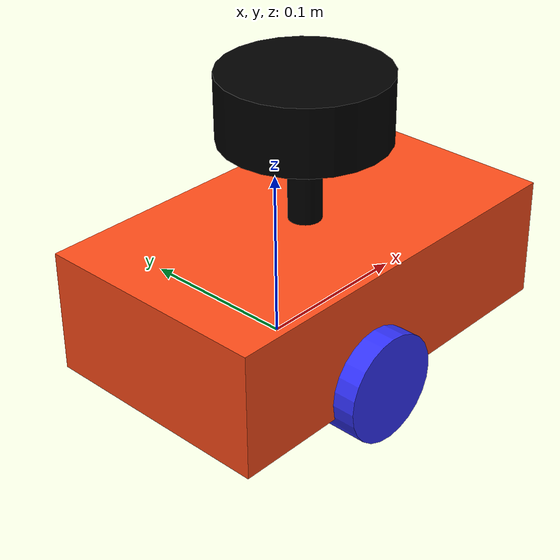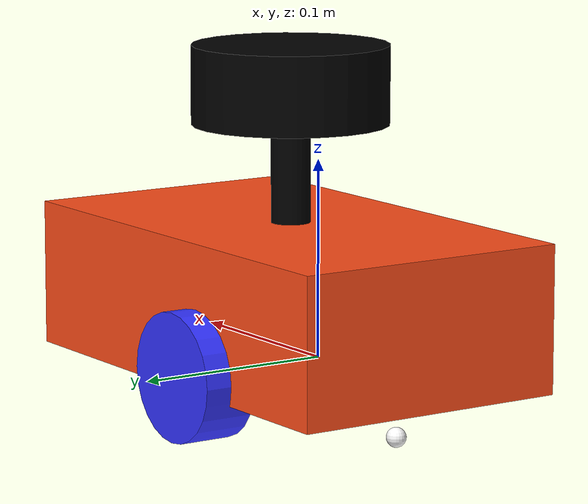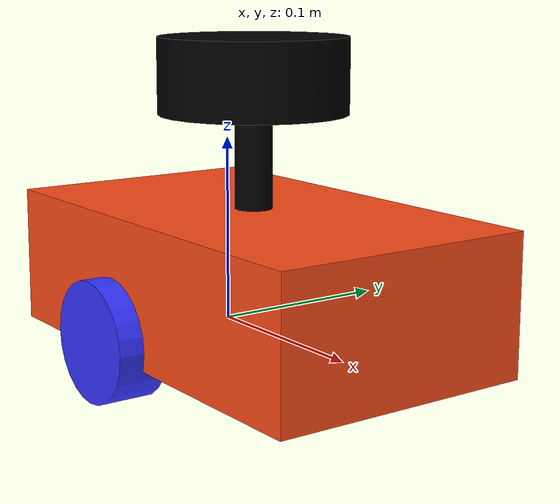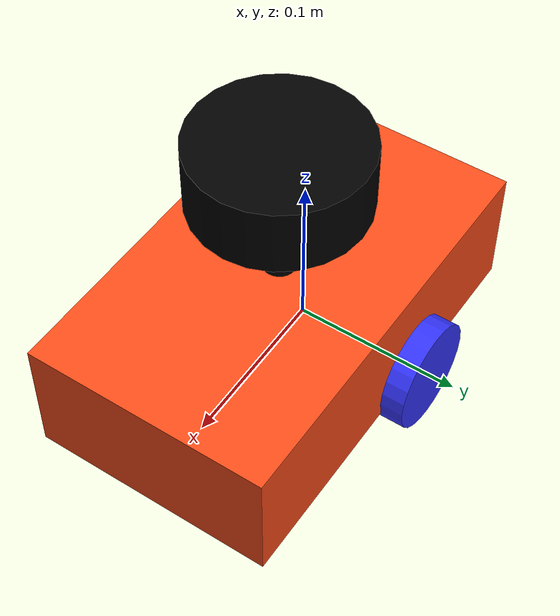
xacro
<?xml version="1.0"?>
<!-- Basic differential drive mobile base -->
<robot xmlns:xacro="http://www.ros.org/wiki/xacro" name="diffdrive_robot">

  <!-- Import diffbot ros2_control description -->
  <xacro:include filename="$(find diffdrive_arduino)/ros2_control/diffbot.ros2_control.xacro" />

  <xacro:include filename="$(find diffdrive_arduino)/urdf/diffbot.core.xacro" />
  <xacro:include filename="$(find diffdrive_arduino)/urdf/diffbot.lidar.xacro" />

</robot>

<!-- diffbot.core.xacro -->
<robot xmlns:xacro="http://www.ros.org/wiki/xacro">

    <xacro:include filename="$(find diffdrive_arduino)/urdf/inertial_macros.xacro" />

    <!-- Updated Parameters based on provided robot specifications -->
    <xacro:property name="chassis_length" value="0.245"/>
    <xacro:property name="chassis_width" value="0.145"/>
    <xacro:property name="chassis_height" value="0.075"/> <!-- Ground to robot top -->
    <xacro:property name="chassis_mass" value="1.045"/> <!-- Updated chassis mass -->
    <xacro:property name="wheel_radius" value="0.0325"/>  <!-- Wheel radius: half of 6.5cm diameter -->
    <xacro:property name="wheel_thickness" value="0.0275"/> <!-- Wheel thickness 2.75cm -->
    <xacro:property name="wheel_mass" value="0.06"/> <!-- Updated wheel mass for each wheel -->
    <xacro:property name="wheel_offset_x" value="0.0975"/> <!-- Main wheels: 7.5cm from the back -->
    <xacro:property name="wheel_offset_y" value="0.0725"/> <!-- Half of chassis_width (0.145/2) -->
    <xacro:property name="wheel_offset_z" value="0.01"/>
    <xacro:property name="caster_wheel_radius" value="0.005"/> <!-- Caster wheel radius: 1cm diameter -->
    <xacro:property name="caster_wheel_mass" value="0.01"/> <!-- Very light caster wheel -->
    <xacro:property name="caster_wheel_offset_x" value="0.03"/> <!-- Caster wheel: 3cm from the front -->
    <xacro:property name="caster_wheel_offset_z" value="${wheel_offset_z - wheel_radius + caster_wheel_radius}"/>

    <!-- Materials for visualization -->
    <material name="white">
        <color rgba="1 1 1 1" />
    </material>

    <material name="orange">
        <color rgba="1 0.3 0.1 1"/>
    </material>

    <material name="blue">
        <color rgba="0.2 0.2 1 1"/>
    </material>

    <material name="black">
        <color rgba="0 0 0 1"/>
    </material>

    <material name="red">
        <color rgba="1 0 0 1"/>
    </material>

    <!-- BASE LINK -->
    <link name="base_link">
    </link>

    <!-- BASE FOOTPRINT LINK -->
    <joint name="base_footprint_joint" type="fixed">
        <parent link="base_link"/>
        <child link="base_footprint"/>
        <origin xyz="0 0 0" rpy="0 0 0"/>
    </joint>

    <link name="base_footprint">
    </link>

    <!-- CHASSIS LINK -->
    <joint name="chassis_joint" type="fixed">
        <parent link="base_link"/>
        <child link="chassis"/>
        <origin xyz="${-wheel_offset_x} 0 ${-wheel_offset_z}"/>
    </joint>

    <link name="chassis">
        <visual>
            <origin xyz="${chassis_length/2} 0 ${chassis_height/2}"/>
            <geometry>
                <box size="${chassis_length} ${chassis_width} ${chassis_height}"/>
            </geometry>
            <material name="orange"/>
        </visual>
        <collision>
            <origin xyz="${chassis_length/2} 0 ${chassis_height/2}"/>
            <geometry>
                <box size="${chassis_length} ${chassis_width} ${chassis_height}"/>
            </geometry>
        </collision>
        <!-- Updated chassis mass -->
        <xacro:inertial_box mass="${chassis_mass}" x="${chassis_length}" y="${chassis_width}" z="${chassis_height}">
            <origin xyz="${chassis_length/2} 0 ${chassis_height/2}" rpy="0 0 0"/>
        </xacro:inertial_box>
    </link>

    <!-- LEFT WHEEL LINK -->
    <joint name="left_wheel_joint" type="continuous">
        <parent link="base_link"/>
        <child link="left_wheel"/>
        <origin xyz="0 ${wheel_offset_y} 0" rpy="-${pi/2} 0 0" />
        <axis xyz="0 0 1"/>
    </joint>

    <link name="left_wheel">
        <visual>
            <geometry>
                <cylinder radius="${wheel_radius}" length="${wheel_thickness}"/>
            </geometry>
            <material name="blue"/>
        </visual>
        <collision>
            <geometry>
                <sphere radius="${wheel_radius}"/>
            </geometry>
        </collision>
        <!-- Updated wheel mass -->
        <xacro:inertial_cylinder mass="${wheel_mass}" length="${wheel_thickness}" radius="${wheel_radius}">
            <origin xyz="0 0 0" rpy="0 0 0"/>
        </xacro:inertial_cylinder>
    </link>

    <!-- RIGHT WHEEL LINK -->
    <joint name="right_wheel_joint" type="continuous">
        <parent link="base_link"/>
        <child link="right_wheel"/>
        <origin xyz="0 ${-wheel_offset_y} 0" rpy="${pi/2} 0 0" />
        <axis xyz="0 0 -1"/>
    </joint>

    <link name="right_wheel">
        <visual>
            <geometry>
                <cylinder radius="${wheel_radius}" length="${wheel_thickness}"/>
            </geometry>
            <material name="blue"/>
        </visual>
        <collision>
            <geometry>
                <sphere radius="${wheel_radius}"/>
            </geometry>
        </collision>
        <!-- Updated wheel mass -->
        <xacro:inertial_cylinder mass="${wheel_mass}" length="${wheel_thickness}" radius="${wheel_radius}">
            <origin xyz="0 0 0" rpy="0 0 0"/>
        </xacro:inertial_cylinder>
    </link>

    <!-- CASTER WHEEL LINK -->
    <joint name="caster_wheel_joint" type="fixed">
        <parent link="chassis"/>
        <child link="caster_wheel"/>
        <origin xyz="${caster_wheel_offset_x} 0 ${caster_wheel_offset_z}"/>
    </joint>

    <link name="caster_wheel">
        <visual>
            <geometry>
                <sphere radius="${caster_wheel_radius}"/>
            </geometry>
            <material name="white"/>
        </visual>
        <collision>
            <geometry>
                <sphere radius="${caster_wheel_radius}"/>
            </geometry>
        </collision>
        <xacro:inertial_sphere mass="${caster_wheel_mass}" radius="${caster_wheel_radius}">
            <origin xyz="0 0 0" rpy="0 0 0"/>
        </xacro:inertial_sphere>
    </link>

</robot>

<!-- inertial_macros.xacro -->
<robot xmlns:xacro="http://www.ros.org/wiki/xacro" >

    <!-- Inertial macros for calculating inertia for spheres, boxes, and cylinders -->
    <!-- Using standard inertial formulas for each shape -->

    <!-- Inertial properties for a sphere -->
    <xacro:macro name="inertial_sphere" params="mass radius *origin">
        <inertial>
            <xacro:insert_block name="origin"/>
            <mass value="${mass}" />
            <inertia ixx="${(2/5) * mass * (radius * radius)}" ixy="0.0" ixz="0.0"
                    iyy="${(2/5) * mass * (radius * radius)}" iyz="0.0"
                    izz="${(2/5) * mass * (radius * radius)}" />
        </inertial>
    </xacro:macro>

    <!-- Inertial properties for a box -->
    <xacro:macro name="inertial_box" params="mass x y z *origin">
        <inertial>
            <xacro:insert_block name="origin"/>
            <mass value="${mass}" />
            <inertia ixx="${(1/12) * mass * (y*y + z*z)}" ixy="0.0" ixz="0.0"
                    iyy="${(1/12) * mass * (x*x + z*z)}" iyz="0.0"
                    izz="${(1/12) * mass * (x*x + y*y)}" />
        </inertial>
    </xacro:macro>

    <!-- Inertial properties for a cylinder -->
    <xacro:macro name="inertial_cylinder" params="mass length radius *origin">
        <inertial>
            <xacro:insert_block name="origin"/>
            <mass value="${mass}" />
            <inertia ixx="${(1/12) * mass * (3*radius*radius + length*length)}" ixy="0.0" ixz="0.0"
                    iyy="${(1/12) * mass * (3*radius*radius + length*length)}" iyz="0.0"
                    izz="${(1/2) * mass * (radius*radius)}" />
        </inertial>
    </xacro:macro>

</robot>

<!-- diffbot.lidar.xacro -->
<robot xmlns:xacro="http://www.ros.org/wiki/xacro" >

    <joint name="laser_joint" type="fixed">
        <parent link="chassis"/>
        <child link="laser_frame"/>
        <origin xyz="0.122 0 0.145" rpy="0 0 0"/> <!-- Adjusted according to ground to LiDAR top: 14.5cm -->
    </joint>

    <link name="laser_frame">
        <visual>
            <geometry>
                <cylinder radius="0.05" length="0.04"/>  <!-- Approximate size of LiDAR -->
            </geometry>
            <material name="black"/>
        </visual>
        <visual>
            <origin xyz="0 0 -0.05"/>
            <geometry>
                <cylinder radius="0.01" length="0.1"/>
            </geometry>
            <material name="black"/>
        </visual>
        <collision>
            <geometry>
                <cylinder radius="0.05" length="0.04"/>
            </geometry>
        </collision>
        <!-- LiDAR inertial properties -->
        <xacro:inertial_cylinder mass="0.125" length="0.04" radius="0.05"> <!-- Updated mass for LiDAR -->
            <origin xyz="0 0 0" rpy="0 0 0"/>
        </xacro:inertial_cylinder>
    </link>

</robot>
